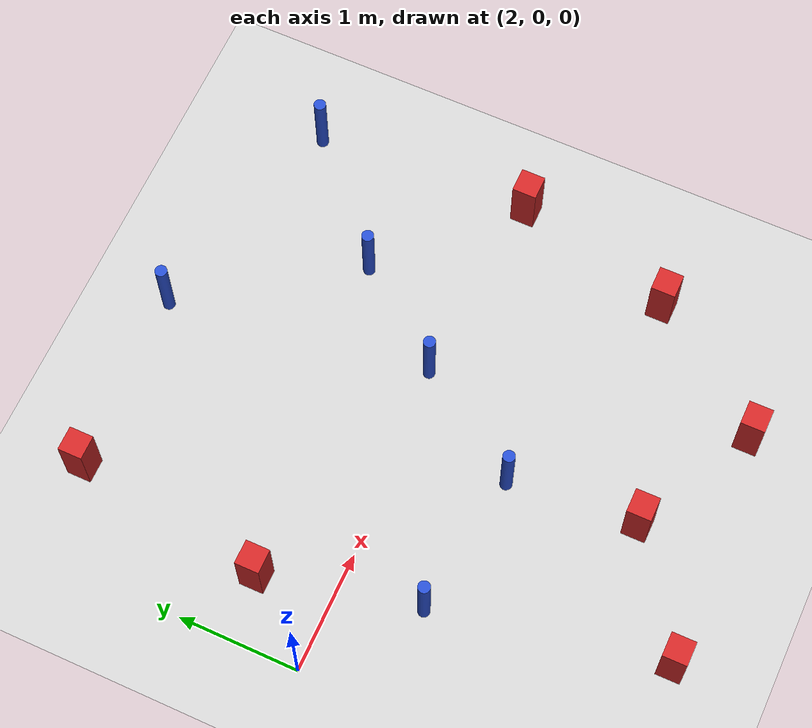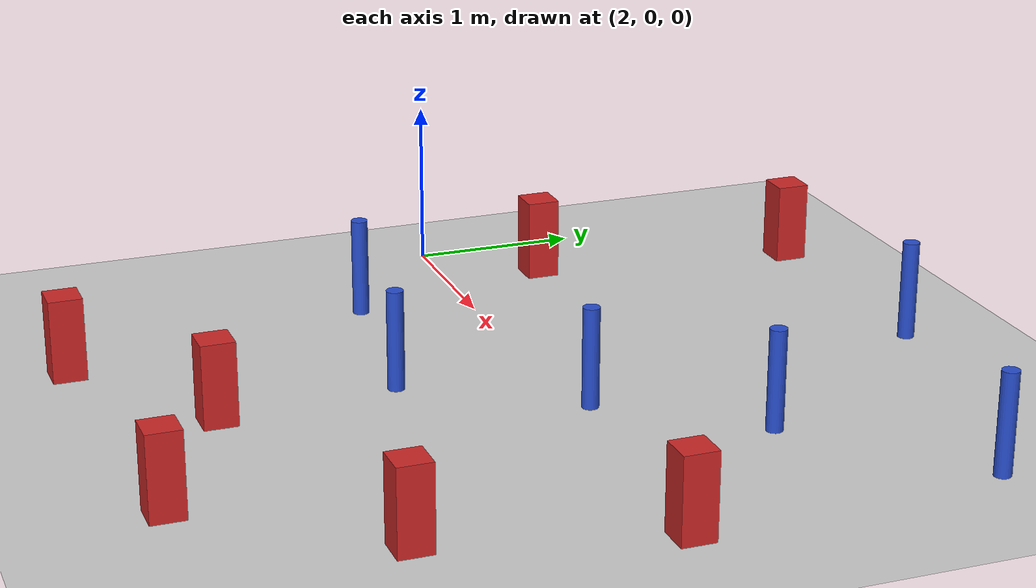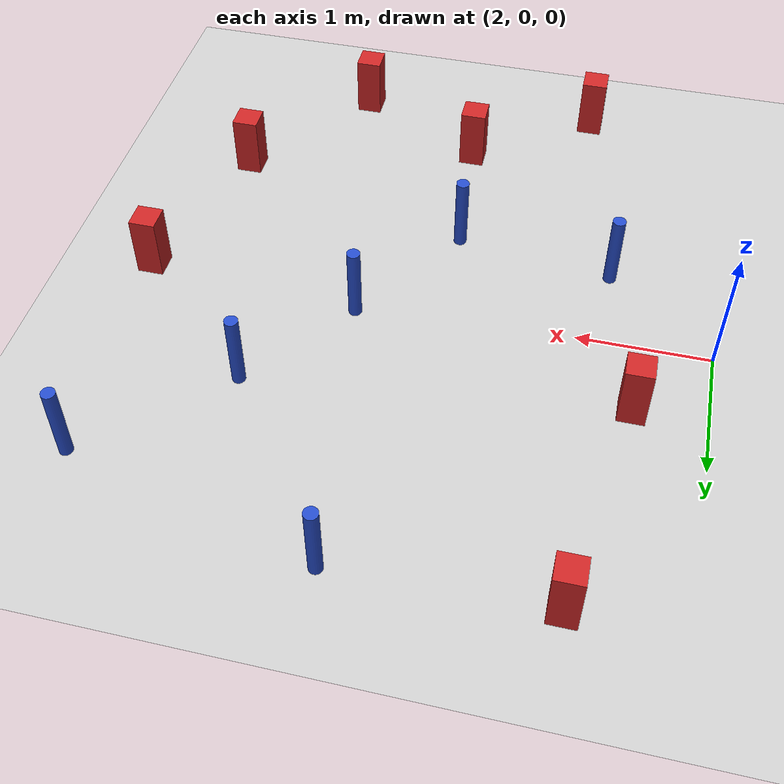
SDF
<sdf version="1.6">
 <world name="default">
  <model name="ground_plane">
   <static>1</static>
   <link name="link">
    <collision name="collision">
     <geometry><plane><normal>0 0 1</normal><size>100 100</size></plane></geometry>
     <surface><friction><ode><mu>100</mu><mu2>50</mu2></ode></friction></surface>
    </collision>
    <visual name="visual">
     <cast_shadows>0</cast_shadows>
     <geometry><plane><normal>0 0 1</normal><size>100 100</size></plane></geometry>
     <material>
      <ambient>1 1 1 1</ambient>
      <diffuse>0.8 0.8 0.8 1</diffuse>
      <specular>0.01 0.01 0.01 1</specular>
     </material>
    </visual>
   </link>
  </model>
  <model name="square_post_obstacle0">
   <static>0</static>
   <link name="link">
    <pose>0 0 0.25 0 -0 0</pose>
    <inertial>
     <mass>100</mass>
     <inertia>
      <ixx>0.166667</ixx>
      <ixy>0</ixy>
      <ixz>0</ixz>
      <iyy>0.166667</iyy>
      <iyz>0</iyz>
      <izz>0.166667</izz>
     </inertia>
    </inertial>
    <collision name="collision"><geometry><box><size>0.2 0.2 0.5</size></box></geometry></collision>
    <visual name="visual">
     <geometry><box><size>0.2 0.2 0.5</size></box></geometry>
     <material>
      <script><name>Gazebo/Red</name><uri>file://media/materials/scripts/gazebo.material</uri></script>
     </material>
    </visual>
   </link>
   <pose>3.18176 -2.55191 0 -5e-06 -0 0.000241</pose>
  </model>
  <model name="square_post_obstacle5">
   <static>0</static>
   <link name="link">
    <pose>0 0 0.25 0 -0 0</pose>
    <inertial>
     <mass>100</mass>
     <inertia>
      <ixx>0.166667</ixx>
      <ixy>0</ixy>
      <ixz>0</ixz>
      <iyy>0.166667</iyy>
      <iyz>0</iyz>
      <izz>0.166667</izz>
     </inertia>
    </inertial>
    <collision name="collision"><geometry><box><size>0.2 0.2 0.5</size></box></geometry></collision>
    <visual name="visual">
     <geometry><box><size>0.2 0.2 0.5</size></box></geometry>
     <material>
      <script><name>Gazebo/Red</name><uri>file://media/materials/scripts/gazebo.material</uri></script>
     </material>
    </visual>
   </link>
   <pose>5.13936 -2.42445 0 -5e-06 -0 0.000241</pose>
  </model>
  <model name="square_post_obstacle8">
   <static>0</static>
   <link name="link">
    <pose>0 0 0.25 0 -0 0</pose>
    <inertial>
     <mass>100</mass>
     <inertia>
      <ixx>0.166667</ixx>
      <ixy>0</ixy>
      <ixz>0</ixz>
      <iyy>0.166667</iyy>
      <iyz>0</iyz>
      <izz>0.166667</izz>
     </inertia>
    </inertial>
    <collision name="collision"><geometry><box><size>0.2 0.2 0.5</size></box></geometry></collision>
    <visual name="visual">
     <geometry><box><size>0.2 0.2 0.5</size></box></geometry>
     <material>
      <script><name>Gazebo/Red</name><uri>file://media/materials/scripts/gazebo.material</uri></script>
     </material>
    </visual>
   </link>
   <pose>5.9276 -1.37575 0 -5e-06 -0 0.000241</pose>
  </model>
  <model name="pole_obstacle12">
   <static>0</static>
   <link name="link">
    <pose>0 0 0.3 0 -0 0</pose>
    <inertial>
     <mass>1</mass>
     <inertia><ixx>0.145833</ixx><ixy>0</ixy><ixz>0</ixz><iyy>0.145833</iyy><iyz>0</iyz><izz>0.125</izz></inertia>
    </inertial>
    <collision name="collision">
     <geometry><cylinder><radius>0.05</radius><length>0.6</length></cylinder></geometry>
    </collision>
    <visual name="visual">
     <geometry><cylinder><radius>0.05</radius><length>0.6</length></cylinder></geometry>
     <material>
      <script><name>Gazebo/Blue</name><uri>file://media/materials/scripts/gazebo.material</uri></script>
     </material>
    </visual>
   </link>
   <pose>6.21061 1.79303 -1e-06 -0 1e-06 1.1e-05</pose>
  </model>
  <model name="pole_obstacle13">
   <static>0</static>
   <link name="link">
    <pose>0 0 0.3 0 -0 0</pose>
    <inertial>
     <mass>1</mass>
     <inertia><ixx>0.145833</ixx><ixy>0</ixy><ixz>0</ixz><iyy>0.145833</iyy><iyz>0</iyz><izz>0.125</izz></inertia>
    </inertial>
    <collision name="collision">
     <geometry><cylinder><radius>0.05</radius><length>0.6</length></cylinder></geometry>
    </collision>
    <visual name="visual">
     <geometry><cylinder><radius>0.05</radius><length>0.6</length></cylinder></geometry>
     <material>
      <script><name>Gazebo/Blue</name><uri>file://media/materials/scripts/gazebo.material</uri></script>
     </material>
    </visual>
   </link>
   <pose>4.01801 -0.832099 -3e-06 0 -0 1e-05</pose>
  </model>
  <model name="square_post_obstacle14">
   <static>0</static>
   <link name="link">
    <pose>0 0 0.25 0 -0 0</pose>
    <inertial>
     <mass>100</mass>
     <inertia>
      <ixx>0.166667</ixx>
      <ixy>0</ixy>
      <ixz>0</ixz>
      <iyy>0.166667</iyy>
      <iyz>0</iyz>
      <izz>0.166667</izz>
     </inertia>
    </inertial>
    <collision name="collision"><geometry><box><size>0.2 0.2 0.5</size></box></geometry></collision>
    <visual name="visual">
     <geometry><box><size>0.2 0.2 0.5</size></box></geometry>
     <material>
      <script><name>Gazebo/Red</name><uri>file://media/materials/scripts/gazebo.material</uri></script>
     </material>
    </visual>
   </link>
   <pose>2.79434 2.23426 0 -5e-06 -0 0.000241</pose>
  </model>
  <model name="square_post_obstacle28">
   <static>0</static>
   <link name="link">
    <pose>0 0 0.25 0 -0 0</pose>
    <inertial>
     <mass>100</mass>
     <inertia>
      <ixx>0.166667</ixx>
      <ixy>0</ixy>
      <ixz>0</ixz>
      <iyy>0.166667</iyy>
      <iyz>0</iyz>
      <izz>0.166667</izz>
     </inertia>
    </inertial>
    <collision name="collision"><geometry><box><size>0.2 0.2 0.5</size></box></geometry></collision>
    <visual name="visual">
     <geometry><box><size>0.2 0.2 0.5</size></box></geometry>
     <material>
      <script><name>Gazebo/Red</name><uri>file://media/materials/scripts/gazebo.material</uri></script>
     </material>
    </visual>
   </link>
   <pose>2.53133 0.604674 0 -5e-06 -0 0.000241</pose>
  </model>
  <model name="pole_obstacle36">
   <static>0</static>
   <link name="link">
    <pose>0 0 0.3 0 -0 0</pose>
    <inertial>
     <mass>1</mass>
     <inertia><ixx>0.145833</ixx><ixy>0</ixy><ixz>0</ixz><iyy>0.145833</iyy><iyz>0</iyz><izz>0.125</izz></inertia>
    </inertial>
    <collision name="collision">
     <geometry><cylinder><radius>0.05</radius><length>0.6</length></cylinder></geometry>
    </collision>
    <visual name="visual">
     <geometry><cylinder><radius>0.05</radius><length>0.6</length></cylinder></geometry>
     <material>
      <script><name>Gazebo/Blue</name><uri>file://media/materials/scripts/gazebo.material</uri></script>
     </material>
    </visual>
   </link>
   <pose>4.63803 0.105509 -2e-06 -1e-06 -0 1.3e-05</pose>
  </model>
  <model name="pole_obstacle53">
   <static>0</static>
   <link name="link">
    <pose>0 0 0.3 0 -0 0</pose>
    <inertial>
     <mass>1</mass>
     <inertia><ixx>0.145833</ixx><ixy>0</ixy><ixz>0</ixz><iyy>0.145833</iyy><iyz>0</iyz><izz>0.125</izz></inertia>
    </inertial>
    <collision name="collision">
     <geometry><cylinder><radius>0.05</radius><length>0.6</length></cylinder></geometry>
    </collision>
    <visual name="visual">
     <geometry><cylinder><radius>0.05</radius><length>0.6</length></cylinder></geometry>
     <material>
      <script><name>Gazebo/Blue</name><uri>file://media/materials/scripts/gazebo.material</uri></script>
     </material>
    </visual>
   </link>
   <pose>2.81418 -0.671406 -2e-06 0 1e-06 6e-06</pose>
  </model>
  <model name="pole_obstacle66">
   <static>0</static>
   <link name="link">
    <pose>0 0 0.3 0 -0 0</pose>
    <inertial>
     <mass>1</mass>
     <inertia><ixx>0.145833</ixx><ixy>0</ixy><ixz>0</ixz><iyy>0.145833</iyy><iyz>0</iyz><izz>0.125</izz></inertia>
    </inertial>
    <collision name="collision">
     <geometry><cylinder><radius>0.05</radius><length>0.6</length></cylinder></geometry>
    </collision>
    <visual name="visual">
     <geometry><cylinder><radius>0.05</radius><length>0.6</length></cylinder></geometry>
     <material>
      <script><name>Gazebo/Blue</name><uri>file://media/materials/scripts/gazebo.material</uri></script>
     </material>
    </visual>
   </link>
   <pose>4.32679 2.27901 -8e-06 0 -0 1.2e-05</pose>
  </model>
  <model name="square_post_obstacle48">
   <static>0</static>
   <link name="link">
    <pose>0 0 0.25 0 -0 0</pose>
    <inertial>
     <mass>100</mass>
     <inertia>
      <ixx>0.166667</ixx>
      <ixy>0</ixy>
      <ixz>0</ixz>
      <iyy>0.166667</iyy>
      <iyz>0</iyz>
      <izz>0.166667</izz>
     </inertia>
    </inertial>
    <collision name="collision"><geometry><box><size>0.2 0.2 0.5</size></box></geometry></collision>
    <visual name="visual">
     <geometry><box><size>0.2 0.2 0.5</size></box></geometry>
     <material>
      <script><name>Gazebo/Red</name><uri>file://media/materials/scripts/gazebo.material</uri></script>
     </material>
    </visual>
   </link>
   <pose>6.2901 -0.032003 0 -5e-06 -0 0.000241</pose>
  </model>
  <model name="pole_obstacle86">
   <static>0</static>
   <link name="link">
    <pose>0 0 0.3 0 -0 0</pose>
    <inertial>
     <mass>1</mass>
     <inertia><ixx>0.145833</ixx><ixy>0</ixy><ixz>0</ixz><iyy>0.145833</iyy><iyz>0</iyz><izz>0.125</izz></inertia>
    </inertial>
    <collision name="collision">
     <geometry><cylinder><radius>0.05</radius><length>0.6</length></cylinder></geometry>
    </collision>
    <visual name="visual">
     <geometry><cylinder><radius>0.05</radius><length>0.6</length></cylinder></geometry>
     <material>
      <script><name>Gazebo/Blue</name><uri>file://media/materials/scripts/gazebo.material</uri></script>
     </material>
    </visual>
   </link>
   <pose>5.27825 0.930017 -4e-06 0 -0 3e-06</pose>
  </model>
  <model name="square_post_obstacle60">
   <static>0</static>
   <link name="link">
    <pose>0 0 0.25 0 -0 0</pose>
    <inertial>
     <mass>100</mass>
     <inertia>
      <ixx>0.166667</ixx>
      <ixy>0</ixy>
      <ixz>0</ixz>
      <iyy>0.166667</iyy>
      <iyz>0</iyz>
      <izz>0.166667</izz>
     </inertia>
    </inertial>
    <collision name="collision"><geometry><box><size>0.2 0.2 0.5</size></box></geometry></collision>
    <visual name="visual">
     <geometry><box><size>0.2 0.2 0.5</size></box></geometry>
     <material>
      <script><name>Gazebo/Red</name><uri>file://media/materials/scripts/gazebo.material</uri></script>
     </material>
    </visual>
   </link>
   <pose>4.11348 -1.89735 0 -5e-06 -0 0.000241</pose>
  </model>
 </world>
</sdf>
